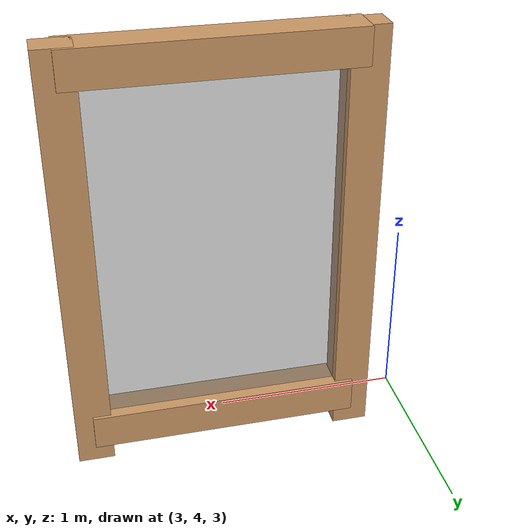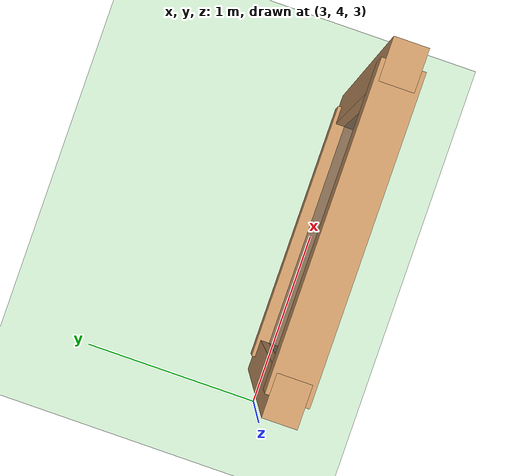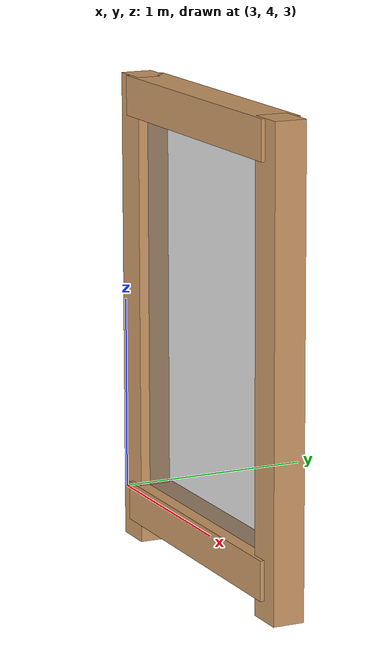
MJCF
<mujoco model="example">
    <compiler coordinate="global"/>
    <default>
        <geom rgba=".8 .6 .4 1"/>
    </default>
    <asset>
        <texture type="skybox" builtin="gradient" rgb1="1 1 1" rgb2=".6 .8 1"
            width="256" height="256"/>
        <texture builtin="gradient" height="100" rgb1="1 1 1" rgb2="0 0 0" type="skybox" width="100"/>
        <texture builtin="flat" height="1278" mark="cross" markrgb="1 1 1" name="texgeom" random="0.01" rgb1="0.8 0.6 0.4" rgb2="0.8 0.6 0.4" type="cube" width="127"/>
        <texture builtin="checker" height="100" name="texplane" rgb1="0 0 0" rgb2="0.8 0.8 0.8" type="2d" width="100"/>
        <material name="MatPlane" reflectance="0" shininess="1" specular="1" texrepeat="30 30" texture="texplane"/>
        <material name="geom" texture="texgeom" texuniform="true"/>
    </asset>
    <worldbody>
        <light cutoff="100" diffuse="1 1 1" directional="true" exponent="1" specular=".1 .1 .1"/>
        <light directional="false" dir="4 4 4" pos="4 4 4" />
        <geom condim="3" friction="1 .1 .1" material="MatPlane" name="floor" pos="0 0 0" rgba="0.8 0.9 0.8 1" size="20 20 0.125" type="plane"/>
        <body>
            <geom type="box" pos="3.25 4 4" size="0.1 0.08 1.2"/> <!-- left post -->
            <geom type="box" pos="4.75 4 4"  size="0.1 0.08 1.2"/> <!-- right post -->
            <geom type="box" pos="4 4 5.1" size="0.75 0.1 0.1" /> <!-- upper post -->
            <geom type="box" pos="4 4 3" size="0.75 0.1 0.1"/> <!-- lower post -->
            <body>
                <geom type="box" pos="4 4 4" size="0.75 0.03 1" rgba="0.5 0.5 0.5 0.5"/>
                <joint name="doorhinge" type="hinge" pos="3.25 4 4" axis="0 0 1" frictional="true" frictionloss="3" damping="1"/>
            </body>
        </body>
    </worldbody>
    <actuator>
        <motor joint="doorhinge" ctrlrange="0 0"/>
    </actuator>
</mujoco>
